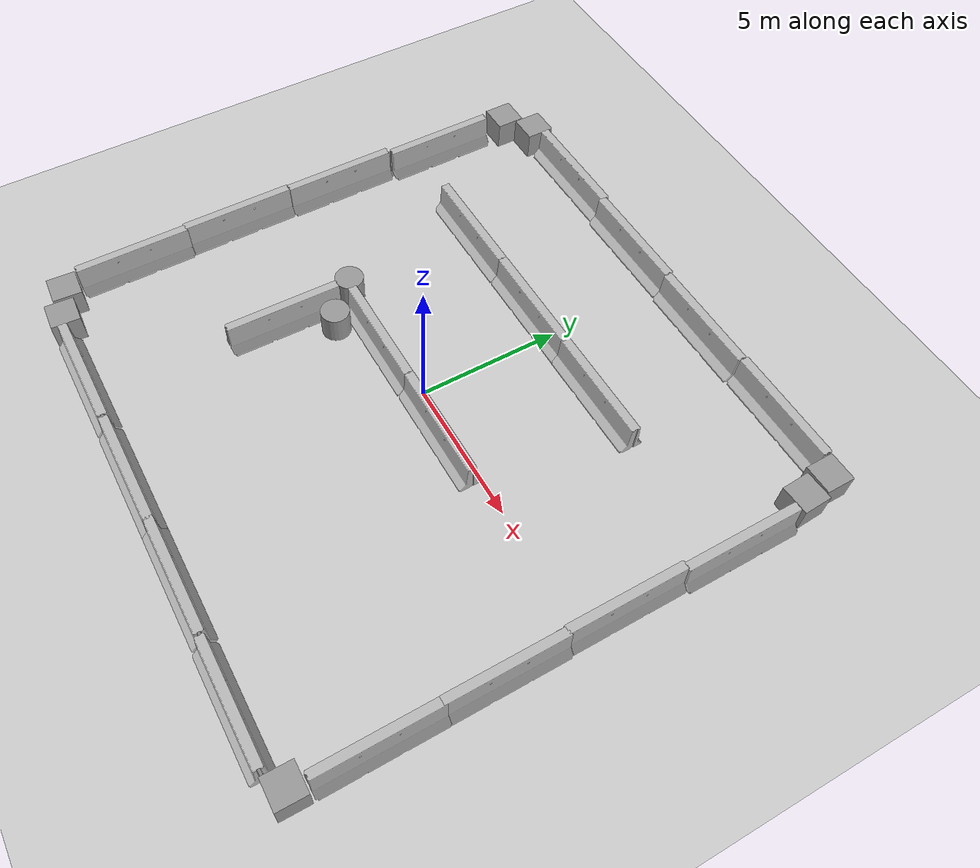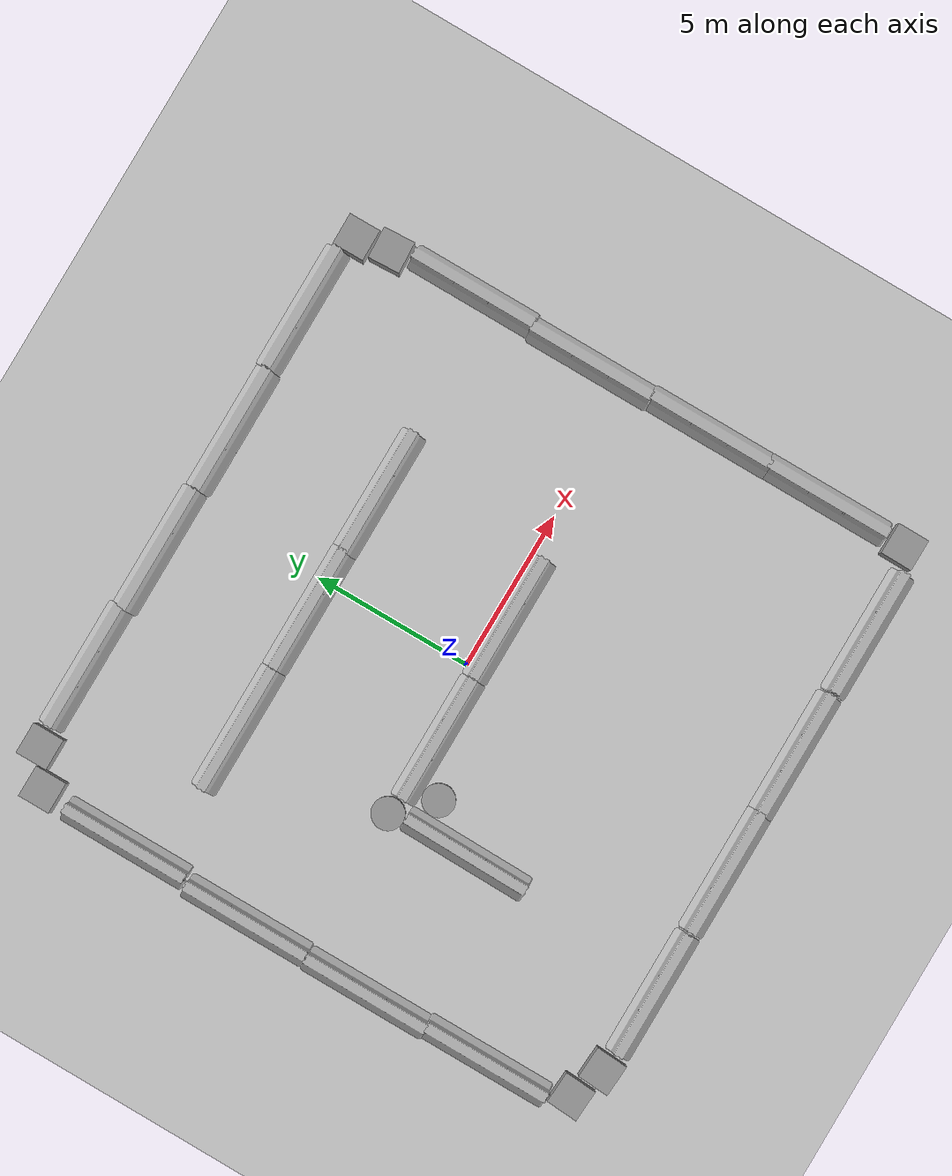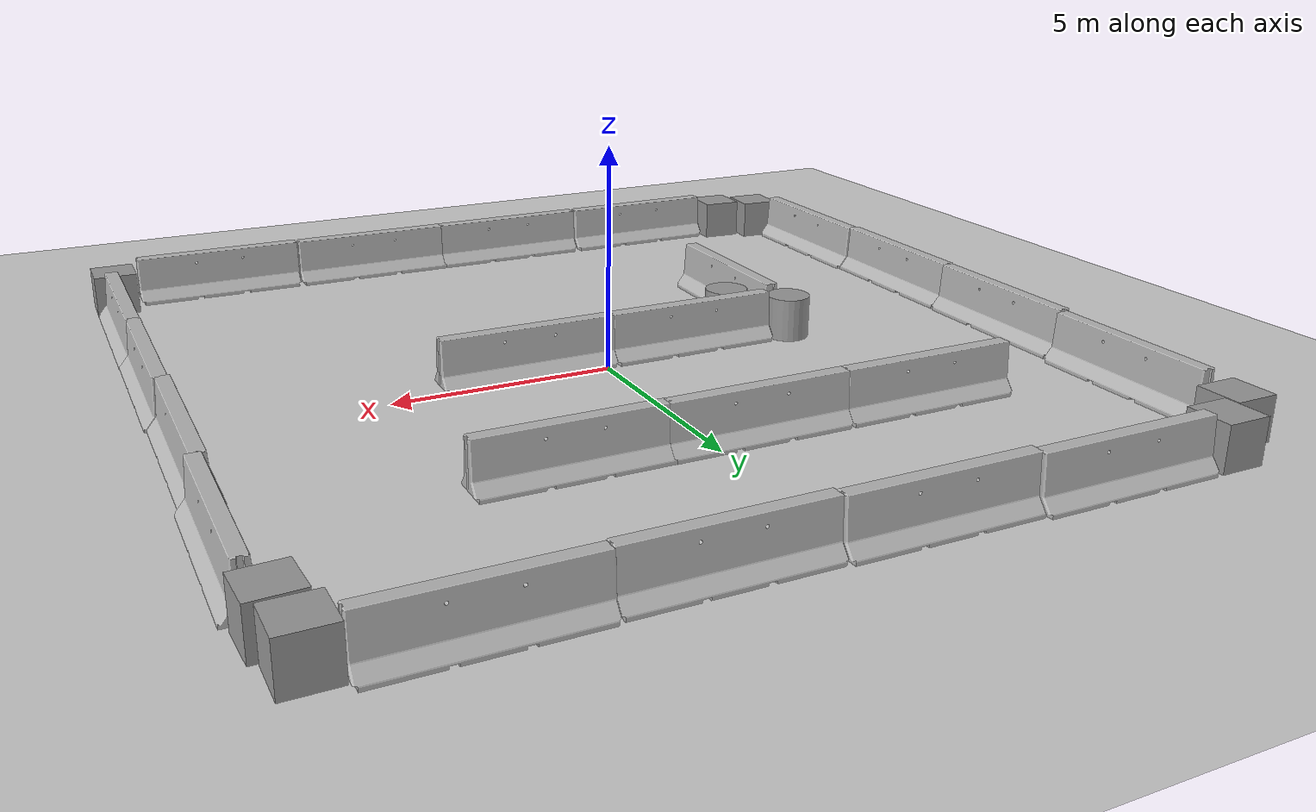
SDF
<sdf version="1.7">
 <world name="default">
  <light name="sun" type="directional">
   <pose>0 0 10 0 -0 0</pose>
   <diffuse>0.8 0.8 0.8 1</diffuse>
   <specular>0.2 0.2 0.2 1</specular>
   <attenuation>
    <range>1000</range>
    <constant>0.9</constant>
    <linear>0.01</linear>
    <quadratic>0.001</quadratic>
   </attenuation>
   <direction>-0.5 0.1 -0.9</direction>
   <spot><inner_angle>0</inner_angle><outer_angle>0</outer_angle><falloff>0</falloff></spot>
  </light>
  <model name="ground_plane">
   <static>1</static>
   <link name="link">
    <collision name="collision">
     <geometry><plane><normal>0 0 1</normal><size>100 100</size></plane></geometry>
     <surface><friction><ode><mu>100</mu><mu2>50</mu2></ode></friction></surface>
    </collision>
    <visual name="visual">
     <cast_shadows>0</cast_shadows>
     <geometry><plane><normal>0 0 1</normal><size>100 100</size></plane></geometry>
     <material>
      <script><uri>file://media/materials/scripts/gazebo.material</uri><name>Gazebo/Grey</name></script>
     </material>
    </visual>
   </link>
  </model>
  <gravity>0 0 -9.8</gravity>
  <magnetic_field>6e-06 2.3e-05 -4.2e-05</magnetic_field>
  <atmosphere type="adiabatic"/>
  <physics name="default_physics" default="0" type="ode">
   <max_step_size>0.001</max_step_size>
   <real_time_factor>1</real_time_factor>
   <real_time_update_rate>1000</real_time_update_rate>
  </physics>
  <scene><ambient>0.4 0.4 0.4 1</ambient><background>0.7 0.7 0.7 1</background><shadows>1</shadows></scene>
  <spherical_coordinates>
   <surface_model>EARTH_WGS84</surface_model>
   <latitude_deg>0</latitude_deg>
   <longitude_deg>0</longitude_deg>
   <elevation>0</elevation>
   <heading_deg>0</heading_deg>
  </spherical_coordinates>
  <model name="jersey_barrier">
   <static>1</static>
   <link name="link">
    <visual name="visual">
     <geometry><mesh><uri>model://jersey_barrier/meshes/jersey_barrier.dae</uri></mesh></geometry>
    </visual>
    <collision name="upright">
     <pose>0 0 0.5715 0 -0 0</pose>
     <geometry><box><size>4.06542 0.3063 1.143</size></box></geometry>
    </collision>
    <collision name="base">
     <pose>0 0 0.032258 0 -0 0</pose>
     <geometry><box><size>4.06542 0.8107 0.064516</size></box></geometry>
    </collision>
    <collision name="base2">
     <pose>0 0 0.1 0 -0 0</pose>
     <geometry><box><size>4.06542 0.65 0.1</size></box></geometry>
    </collision>
    <collision name="base3">
     <pose>0 0 0.2 0 -0 0</pose>
     <geometry><box><size>4.06542 0.5 0.1</size></box></geometry>
    </collision>
    <collision name="left-angle">
     <pose>0 -0.224 0.2401 0.9 -0 0</pose>
     <geometry><box><size>4.06542 0.5 0.064516</size></box></geometry>
    </collision>
    <collision name="right-angle">
     <pose>0 0.224 0.2401 -0.9 0 0</pose>
     <geometry><box><size>4.06542 0.5 0.064516</size></box></geometry>
    </collision>
   </link>
   <pose>-5.65677 9.4608 0 0 -0 0</pose>
  </model>
  <model name="jersey_barrier_clone">
   <static>1</static>
   <link name="link">
    <visual name="visual">
     <geometry><mesh><uri>model://jersey_barrier/meshes/jersey_barrier.dae</uri></mesh></geometry>
    </visual>
    <collision name="upright">
     <pose>0 0 0.5715 0 -0 0</pose>
     <geometry><box><size>4.06542 0.3063 1.143</size></box></geometry>
    </collision>
    <collision name="base">
     <pose>0 0 0.032258 0 -0 0</pose>
     <geometry><box><size>4.06542 0.8107 0.064516</size></box></geometry>
    </collision>
    <collision name="base2">
     <pose>0 0 0.1 0 -0 0</pose>
     <geometry><box><size>4.06542 0.65 0.1</size></box></geometry>
    </collision>
    <collision name="base3">
     <pose>0 0 0.2 0 -0 0</pose>
     <geometry><box><size>4.06542 0.5 0.1</size></box></geometry>
    </collision>
    <collision name="left-angle">
     <pose>0 -0.224 0.2401 0.9 -0 0</pose>
     <geometry><box><size>4.06542 0.5 0.064516</size></box></geometry>
    </collision>
    <collision name="right-angle">
     <pose>0 0.224 0.2401 -0.9 0 0</pose>
     <geometry><box><size>4.06542 0.5 0.064516</size></box></geometry>
    </collision>
   </link>
   <pose>-1.65987 9.36075 0 0 -0 0</pose>
  </model>
  <model name="jersey_barrier_clone_0">
   <static>1</static>
   <link name="link">
    <visual name="visual">
     <geometry><mesh><uri>model://jersey_barrier/meshes/jersey_barrier.dae</uri></mesh></geometry>
    </visual>
    <collision name="upright">
     <pose>0 0 0.5715 0 -0 0</pose>
     <geometry><box><size>4.06542 0.3063 1.143</size></box></geometry>
    </collision>
    <collision name="base">
     <pose>0 0 0.032258 0 -0 0</pose>
     <geometry><box><size>4.06542 0.8107 0.064516</size></box></geometry>
    </collision>
    <collision name="base2">
     <pose>0 0 0.1 0 -0 0</pose>
     <geometry><box><size>4.06542 0.65 0.1</size></box></geometry>
    </collision>
    <collision name="base3">
     <pose>0 0 0.2 0 -0 0</pose>
     <geometry><box><size>4.06542 0.5 0.1</size></box></geometry>
    </collision>
    <collision name="left-angle">
     <pose>0 -0.224 0.2401 0.9 -0 0</pose>
     <geometry><box><size>4.06542 0.5 0.064516</size></box></geometry>
    </collision>
    <collision name="right-angle">
     <pose>0 0.224 0.2401 -0.9 0 0</pose>
     <geometry><box><size>4.06542 0.5 0.064516</size></box></geometry>
    </collision>
   </link>
   <pose>2.39773 9.29085 0 0 -0 0</pose>
  </model>
  <model name="jersey_barrier_clone_1">
   <static>1</static>
   <link name="link">
    <visual name="visual">
     <geometry><mesh><uri>model://jersey_barrier/meshes/jersey_barrier.dae</uri></mesh></geometry>
    </visual>
    <collision name="upright">
     <pose>0 0 0.5715 0 -0 0</pose>
     <geometry><box><size>4.06542 0.3063 1.143</size></box></geometry>
    </collision>
    <collision name="base">
     <pose>0 0 0.032258 0 -0 0</pose>
     <geometry><box><size>4.06542 0.8107 0.064516</size></box></geometry>
    </collision>
    <collision name="base2">
     <pose>0 0 0.1 0 -0 0</pose>
     <geometry><box><size>4.06542 0.65 0.1</size></box></geometry>
    </collision>
    <collision name="base3">
     <pose>0 0 0.2 0 -0 0</pose>
     <geometry><box><size>4.06542 0.5 0.1</size></box></geometry>
    </collision>
    <collision name="left-angle">
     <pose>0 -0.224 0.2401 0.9 -0 0</pose>
     <geometry><box><size>4.06542 0.5 0.064516</size></box></geometry>
    </collision>
    <collision name="right-angle">
     <pose>0 0.224 0.2401 -0.9 0 0</pose>
     <geometry><box><size>4.06542 0.5 0.064516</size></box></geometry>
    </collision>
   </link>
   <pose>6.45464 9.33993 0 0 -0 0</pose>
  </model>
  <model name="jersey_barrier_clone_3">
   <static>1</static>
   <link name="link">
    <visual name="visual">
     <geometry><mesh><uri>model://jersey_barrier/meshes/jersey_barrier.dae</uri></mesh></geometry>
    </visual>
    <collision name="upright">
     <pose>0 0 0.5715 0 -0 0</pose>
     <geometry><box><size>4.06542 0.3063 1.143</size></box></geometry>
    </collision>
    <collision name="base">
     <pose>0 0 0.032258 0 -0 0</pose>
     <geometry><box><size>4.06542 0.8107 0.064516</size></box></geometry>
    </collision>
    <collision name="base2">
     <pose>0 0 0.1 0 -0 0</pose>
     <geometry><box><size>4.06542 0.65 0.1</size></box></geometry>
    </collision>
    <collision name="base3">
     <pose>0 0 0.2 0 -0 0</pose>
     <geometry><box><size>4.06542 0.5 0.1</size></box></geometry>
    </collision>
    <collision name="left-angle">
     <pose>0 -0.224 0.2401 0.9 -0 0</pose>
     <geometry><box><size>4.06542 0.5 0.064516</size></box></geometry>
    </collision>
    <collision name="right-angle">
     <pose>0 0.224 0.2401 -0.9 0 0</pose>
     <geometry><box><size>4.06542 0.5 0.064516</size></box></geometry>
    </collision>
   </link>
   <pose>9.44656 5.35522 0 0 0 -1.56865</pose>
  </model>
  <model name="jersey_barrier_clone_3_clone">
   <static>1</static>
   <link name="link">
    <visual name="visual">
     <geometry><mesh><uri>model://jersey_barrier/meshes/jersey_barrier.dae</uri></mesh></geometry>
    </visual>
    <collision name="upright">
     <pose>0 0 0.5715 0 -0 0</pose>
     <geometry><box><size>4.06542 0.3063 1.143</size></box></geometry>
    </collision>
    <collision name="base">
     <pose>0 0 0.032258 0 -0 0</pose>
     <geometry><box><size>4.06542 0.8107 0.064516</size></box></geometry>
    </collision>
    <collision name="base2">
     <pose>0 0 0.1 0 -0 0</pose>
     <geometry><box><size>4.06542 0.65 0.1</size></box></geometry>
    </collision>
    <collision name="base3">
     <pose>0 0 0.2 0 -0 0</pose>
     <geometry><box><size>4.06542 0.5 0.1</size></box></geometry>
    </collision>
    <collision name="left-angle">
     <pose>0 -0.224 0.2401 0.9 -0 0</pose>
     <geometry><box><size>4.06542 0.5 0.064516</size></box></geometry>
    </collision>
    <collision name="right-angle">
     <pose>0 0.224 0.2401 -0.9 0 0</pose>
     <geometry><box><size>4.06542 0.5 0.064516</size></box></geometry>
    </collision>
   </link>
   <pose>9.3727 1.33119 0 0 0 -1.56865</pose>
  </model>
  <model name="jersey_barrier_clone_3_clone_0">
   <static>1</static>
   <link name="link">
    <visual name="visual">
     <geometry><mesh><uri>model://jersey_barrier/meshes/jersey_barrier.dae</uri></mesh></geometry>
    </visual>
    <collision name="upright">
     <pose>0 0 0.5715 0 -0 0</pose>
     <geometry><box><size>4.06542 0.3063 1.143</size></box></geometry>
    </collision>
    <collision name="base">
     <pose>0 0 0.032258 0 -0 0</pose>
     <geometry><box><size>4.06542 0.8107 0.064516</size></box></geometry>
    </collision>
    <collision name="base2">
     <pose>0 0 0.1 0 -0 0</pose>
     <geometry><box><size>4.06542 0.65 0.1</size></box></geometry>
    </collision>
    <collision name="base3">
     <pose>0 0 0.2 0 -0 0</pose>
     <geometry><box><size>4.06542 0.5 0.1</size></box></geometry>
    </collision>
    <collision name="left-angle">
     <pose>0 -0.224 0.2401 0.9 -0 0</pose>
     <geometry><box><size>4.06542 0.5 0.064516</size></box></geometry>
    </collision>
    <collision name="right-angle">
     <pose>0 0.224 0.2401 -0.9 0 0</pose>
     <geometry><box><size>4.06542 0.5 0.064516</size></box></geometry>
    </collision>
   </link>
   <pose>9.4315 -2.6268 0 0 0 -1.56865</pose>
  </model>
  <model name="jersey_barrier_clone_3_clone_1">
   <static>1</static>
   <link name="link">
    <visual name="visual">
     <geometry><mesh><uri>model://jersey_barrier/meshes/jersey_barrier.dae</uri></mesh></geometry>
    </visual>
    <collision name="upright">
     <pose>0 0 0.5715 0 -0 0</pose>
     <geometry><box><size>4.06542 0.3063 1.143</size></box></geometry>
    </collision>
    <collision name="base">
     <pose>0 0 0.032258 0 -0 0</pose>
     <geometry><box><size>4.06542 0.8107 0.064516</size></box></geometry>
    </collision>
    <collision name="base2">
     <pose>0 0 0.1 0 -0 0</pose>
     <geometry><box><size>4.06542 0.65 0.1</size></box></geometry>
    </collision>
    <collision name="base3">
     <pose>0 0 0.2 0 -0 0</pose>
     <geometry><box><size>4.06542 0.5 0.1</size></box></geometry>
    </collision>
    <collision name="left-angle">
     <pose>0 -0.224 0.2401 0.9 -0 0</pose>
     <geometry><box><size>4.06542 0.5 0.064516</size></box></geometry>
    </collision>
    <collision name="right-angle">
     <pose>0 0.224 0.2401 -0.9 0 0</pose>
     <geometry><box><size>4.06542 0.5 0.064516</size></box></geometry>
    </collision>
   </link>
   <pose>9.44969 -6.53485 0 0 0 -1.56865</pose>
  </model>
  <model name="jersey_barrier_clone_2_clone">
   <static>1</static>
   <link name="link">
    <visual name="visual">
     <geometry><mesh><uri>model://jersey_barrier/meshes/jersey_barrier.dae</uri></mesh></geometry>
    </visual>
    <collision name="upright">
     <pose>0 0 0.5715 0 -0 0</pose>
     <geometry><box><size>4.06542 0.3063 1.143</size></box></geometry>
    </collision>
    <collision name="base">
     <pose>0 0 0.032258 0 -0 0</pose>
     <geometry><box><size>4.06542 0.8107 0.064516</size></box></geometry>
    </collision>
    <collision name="base2">
     <pose>0 0 0.1 0 -0 0</pose>
     <geometry><box><size>4.06542 0.65 0.1</size></box></geometry>
    </collision>
    <collision name="base3">
     <pose>0 0 0.2 0 -0 0</pose>
     <geometry><box><size>4.06542 0.5 0.1</size></box></geometry>
    </collision>
    <collision name="left-angle">
     <pose>0 -0.224 0.2401 0.9 -0 0</pose>
     <geometry><box><size>4.06542 0.5 0.064516</size></box></geometry>
    </collision>
    <collision name="right-angle">
     <pose>0 0.224 0.2401 -0.9 0 0</pose>
     <geometry><box><size>4.06542 0.5 0.064516</size></box></geometry>
    </collision>
   </link>
   <pose>6.70657 -9.54347 0 0 -0 0</pose>
  </model>
  <model name="jersey_barrier_clone_2_clone_0">
   <static>1</static>
   <link name="link">
    <visual name="visual">
     <geometry><mesh><uri>model://jersey_barrier/meshes/jersey_barrier.dae</uri></mesh></geometry>
    </visual>
    <collision name="upright">
     <pose>0 0 0.5715 0 -0 0</pose>
     <geometry><box><size>4.06542 0.3063 1.143</size></box></geometry>
    </collision>
    <collision name="base">
     <pose>0 0 0.032258 0 -0 0</pose>
     <geometry><box><size>4.06542 0.8107 0.064516</size></box></geometry>
    </collision>
    <collision name="base2">
     <pose>0 0 0.1 0 -0 0</pose>
     <geometry><box><size>4.06542 0.65 0.1</size></box></geometry>
    </collision>
    <collision name="base3">
     <pose>0 0 0.2 0 -0 0</pose>
     <geometry><box><size>4.06542 0.5 0.1</size></box></geometry>
    </collision>
    <collision name="left-angle">
     <pose>0 -0.224 0.2401 0.9 -0 0</pose>
     <geometry><box><size>4.06542 0.5 0.064516</size></box></geometry>
    </collision>
    <collision name="right-angle">
     <pose>0 0.224 0.2401 -0.9 0 0</pose>
     <geometry><box><size>4.06542 0.5 0.064516</size></box></geometry>
    </collision>
   </link>
   <pose>2.59616 -9.50928 0 0 -0 0</pose>
  </model>
  <model name="jersey_barrier_clone_2_clone_1">
   <static>1</static>
   <link name="link">
    <visual name="visual">
     <geometry><mesh><uri>model://jersey_barrier/meshes/jersey_barrier.dae</uri></mesh></geometry>
    </visual>
    <collision name="upright">
     <pose>0 0 0.5715 0 -0 0</pose>
     <geometry><box><size>4.06542 0.3063 1.143</size></box></geometry>
    </collision>
    <collision name="base">
     <pose>0 0 0.032258 0 -0 0</pose>
     <geometry><box><size>4.06542 0.8107 0.064516</size></box></geometry>
    </collision>
    <collision name="base2">
     <pose>0 0 0.1 0 -0 0</pose>
     <geometry><box><size>4.06542 0.65 0.1</size></box></geometry>
    </collision>
    <collision name="base3">
     <pose>0 0 0.2 0 -0 0</pose>
     <geometry><box><size>4.06542 0.5 0.1</size></box></geometry>
    </collision>
    <collision name="left-angle">
     <pose>0 -0.224 0.2401 0.9 -0 0</pose>
     <geometry><box><size>4.06542 0.5 0.064516</size></box></geometry>
    </collision>
    <collision name="right-angle">
     <pose>0 0.224 0.2401 -0.9 0 0</pose>
     <geometry><box><size>4.06542 0.5 0.064516</size></box></geometry>
    </collision>
   </link>
   <pose>-1.33414 -9.50852 0 0 -0 0</pose>
  </model>
  <model name="jersey_barrier_clone_2_clone_2">
   <static>1</static>
   <link name="link">
    <visual name="visual">
     <geometry><mesh><uri>model://jersey_barrier/meshes/jersey_barrier.dae</uri></mesh></geometry>
    </visual>
    <collision name="upright">
     <pose>0 0 0.5715 0 -0 0</pose>
     <geometry><box><size>4.06542 0.3063 1.143</size></box></geometry>
    </collision>
    <collision name="base">
     <pose>0 0 0.032258 0 -0 0</pose>
     <geometry><box><size>4.06542 0.8107 0.064516</size></box></geometry>
    </collision>
    <collision name="base2">
     <pose>0 0 0.1 0 -0 0</pose>
     <geometry><box><size>4.06542 0.65 0.1</size></box></geometry>
    </collision>
    <collision name="base3">
     <pose>0 0 0.2 0 -0 0</pose>
     <geometry><box><size>4.06542 0.5 0.1</size></box></geometry>
    </collision>
    <collision name="left-angle">
     <pose>0 -0.224 0.2401 0.9 -0 0</pose>
     <geometry><box><size>4.06542 0.5 0.064516</size></box></geometry>
    </collision>
    <collision name="right-angle">
     <pose>0 0.224 0.2401 -0.9 0 0</pose>
     <geometry><box><size>4.06542 0.5 0.064516</size></box></geometry>
    </collision>
   </link>
   <pose>-5.44605 -9.49634 0 0 -0 0</pose>
  </model>
  <model name="jersey_barrier_clone_3_clone_1_clone">
   <static>1</static>
   <link name="link">
    <visual name="visual">
     <geometry><mesh><uri>model://jersey_barrier/meshes/jersey_barrier.dae</uri></mesh></geometry>
    </visual>
    <collision name="upright">
     <pose>0 0 0.5715 0 -0 0</pose>
     <geometry><box><size>4.06542 0.3063 1.143</size></box></geometry>
    </collision>
    <collision name="base">
     <pose>0 0 0.032258 0 -0 0</pose>
     <geometry><box><size>4.06542 0.8107 0.064516</size></box></geometry>
    </collision>
    <collision name="base2">
     <pose>0 0 0.1 0 -0 0</pose>
     <geometry><box><size>4.06542 0.65 0.1</size></box></geometry>
    </collision>
    <collision name="base3">
     <pose>0 0 0.2 0 -0 0</pose>
     <geometry><box><size>4.06542 0.5 0.1</size></box></geometry>
    </collision>
    <collision name="left-angle">
     <pose>0 -0.224 0.2401 0.9 -0 0</pose>
     <geometry><box><size>4.06542 0.5 0.064516</size></box></geometry>
    </collision>
    <collision name="right-angle">
     <pose>0 0.224 0.2401 -0.9 0 0</pose>
     <geometry><box><size>4.06542 0.5 0.064516</size></box></geometry>
    </collision>
   </link>
   <pose>-9.54289 -6.33149 0 0 0 -1.56865</pose>
  </model>
  <model name="jersey_barrier_clone_3_clone_1_clone_0">
   <static>1</static>
   <link name="link">
    <visual name="visual">
     <geometry><mesh><uri>model://jersey_barrier/meshes/jersey_barrier.dae</uri></mesh></geometry>
    </visual>
    <collision name="upright">
     <pose>0 0 0.5715 0 -0 0</pose>
     <geometry><box><size>4.06542 0.3063 1.143</size></box></geometry>
    </collision>
    <collision name="base">
     <pose>0 0 0.032258 0 -0 0</pose>
     <geometry><box><size>4.06542 0.8107 0.064516</size></box></geometry>
    </collision>
    <collision name="base2">
     <pose>0 0 0.1 0 -0 0</pose>
     <geometry><box><size>4.06542 0.65 0.1</size></box></geometry>
    </collision>
    <collision name="base3">
     <pose>0 0 0.2 0 -0 0</pose>
     <geometry><box><size>4.06542 0.5 0.1</size></box></geometry>
    </collision>
    <collision name="left-angle">
     <pose>0 -0.224 0.2401 0.9 -0 0</pose>
     <geometry><box><size>4.06542 0.5 0.064516</size></box></geometry>
    </collision>
    <collision name="right-angle">
     <pose>0 0.224 0.2401 -0.9 0 0</pose>
     <geometry><box><size>4.06542 0.5 0.064516</size></box></geometry>
    </collision>
   </link>
   <pose>-9.6221 -2.35336 0 0 0 -1.56865</pose>
  </model>
  <model name="jersey_barrier_clone_3_clone_1_clone_1">
   <static>1</static>
   <link name="link">
    <visual name="visual">
     <geometry><mesh><uri>model://jersey_barrier/meshes/jersey_barrier.dae</uri></mesh></geometry>
    </visual>
    <collision name="upright">
     <pose>0 0 0.5715 0 -0 0</pose>
     <geometry><box><size>4.06542 0.3063 1.143</size></box></geometry>
    </collision>
    <collision name="base">
     <pose>0 0 0.032258 0 -0 0</pose>
     <geometry><box><size>4.06542 0.8107 0.064516</size></box></geometry>
    </collision>
    <collision name="base2">
     <pose>0 0 0.1 0 -0 0</pose>
     <geometry><box><size>4.06542 0.65 0.1</size></box></geometry>
    </collision>
    <collision name="base3">
     <pose>0 0 0.2 0 -0 0</pose>
     <geometry><box><size>4.06542 0.5 0.1</size></box></geometry>
    </collision>
    <collision name="left-angle">
     <pose>0 -0.224 0.2401 0.9 -0 0</pose>
     <geometry><box><size>4.06542 0.5 0.064516</size></box></geometry>
    </collision>
    <collision name="right-angle">
     <pose>0 0.224 0.2401 -0.9 0 0</pose>
     <geometry><box><size>4.06542 0.5 0.064516</size></box></geometry>
    </collision>
   </link>
   <pose>-9.58952 1.69745 0 0 0 -1.56865</pose>
  </model>
  <model name="jersey_barrier_clone_3_clone_1_clone_2">
   <static>1</static>
   <link name="link">
    <visual name="visual">
     <geometry><mesh><uri>model://jersey_barrier/meshes/jersey_barrier.dae</uri></mesh></geometry>
    </visual>
    <collision name="upright">
     <pose>0 0 0.5715 0 -0 0</pose>
     <geometry><box><size>4.06542 0.3063 1.143</size></box></geometry>
    </collision>
    <collision name="base">
     <pose>0 0 0.032258 0 -0 0</pose>
     <geometry><box><size>4.06542 0.8107 0.064516</size></box></geometry>
    </collision>
    <collision name="base2">
     <pose>0 0 0.1 0 -0 0</pose>
     <geometry><box><size>4.06542 0.65 0.1</size></box></geometry>
    </collision>
    <collision name="base3">
     <pose>0 0 0.2 0 -0 0</pose>
     <geometry><box><size>4.06542 0.5 0.1</size></box></geometry>
    </collision>
    <collision name="left-angle">
     <pose>0 -0.224 0.2401 0.9 -0 0</pose>
     <geometry><box><size>4.06542 0.5 0.064516</size></box></geometry>
    </collision>
    <collision name="right-angle">
     <pose>0 0.224 0.2401 -0.9 0 0</pose>
     <geometry><box><size>4.06542 0.5 0.064516</size></box></geometry>
    </collision>
   </link>
   <pose>-9.44715 5.83721 0 0 0 -1.56865</pose>
  </model>
  <model name="jersey_barrier_0">
   <static>1</static>
   <link name="link">
    <visual name="visual">
     <geometry><mesh><uri>model://jersey_barrier/meshes/jersey_barrier.dae</uri></mesh></geometry>
    </visual>
    <collision name="upright">
     <pose>0 0 0.5715 0 -0 0</pose>
     <geometry><box><size>4.06542 0.3063 1.143</size></box></geometry>
    </collision>
    <collision name="base">
     <pose>0 0 0.032258 0 -0 0</pose>
     <geometry><box><size>4.06542 0.8107 0.064516</size></box></geometry>
    </collision>
    <collision name="base2">
     <pose>0 0 0.1 0 -0 0</pose>
     <geometry><box><size>4.06542 0.65 0.1</size></box></geometry>
    </collision>
    <collision name="base3">
     <pose>0 0 0.2 0 -0 0</pose>
     <geometry><box><size>4.06542 0.5 0.1</size></box></geometry>
    </collision>
    <collision name="left-angle">
     <pose>0 -0.224 0.2401 0.9 -0 0</pose>
     <geometry><box><size>4.06542 0.5 0.064516</size></box></geometry>
    </collision>
    <collision name="right-angle">
     <pose>0 0.224 0.2401 -0.9 0 0</pose>
     <geometry><box><size>4.06542 0.5 0.064516</size></box></geometry>
    </collision>
   </link>
   <pose>-4.97429 4.73074 0 0 -0 0</pose>
  </model>
  <model name="jersey_barrier_0_clone">
   <static>1</static>
   <link name="link">
    <visual name="visual">
     <geometry><mesh><uri>model://jersey_barrier/meshes/jersey_barrier.dae</uri></mesh></geometry>
    </visual>
    <collision name="upright">
     <pose>0 0 0.5715 0 -0 0</pose>
     <geometry><box><size>4.06542 0.3063 1.143</size></box></geometry>
    </collision>
    <collision name="base">
     <pose>0 0 0.032258 0 -0 0</pose>
     <geometry><box><size>4.06542 0.8107 0.064516</size></box></geometry>
    </collision>
    <collision name="base2">
     <pose>0 0 0.1 0 -0 0</pose>
     <geometry><box><size>4.06542 0.65 0.1</size></box></geometry>
    </collision>
    <collision name="base3">
     <pose>0 0 0.2 0 -0 0</pose>
     <geometry><box><size>4.06542 0.5 0.1</size></box></geometry>
    </collision>
    <collision name="left-angle">
     <pose>0 -0.224 0.2401 0.9 -0 0</pose>
     <geometry><box><size>4.06542 0.5 0.064516</size></box></geometry>
    </collision>
    <collision name="right-angle">
     <pose>0 0.224 0.2401 -0.9 0 0</pose>
     <geometry><box><size>4.06542 0.5 0.064516</size></box></geometry>
    </collision>
   </link>
   <pose>-0.93635 4.73131 0 0 -0 0</pose>
  </model>
  <model name="jersey_barrier_0_clone_0">
   <static>1</static>
   <link name="link">
    <visual name="visual">
     <geometry><mesh><uri>model://jersey_barrier/meshes/jersey_barrier.dae</uri></mesh></geometry>
    </visual>
    <collision name="upright">
     <pose>0 0 0.5715 0 -0 0</pose>
     <geometry><box><size>4.06542 0.3063 1.143</size></box></geometry>
    </collision>
    <collision name="base">
     <pose>0 0 0.032258 0 -0 0</pose>
     <geometry><box><size>4.06542 0.8107 0.064516</size></box></geometry>
    </collision>
    <collision name="base2">
     <pose>0 0 0.1 0 -0 0</pose>
     <geometry><box><size>4.06542 0.65 0.1</size></box></geometry>
    </collision>
    <collision name="base3">
     <pose>0 0 0.2 0 -0 0</pose>
     <geometry><box><size>4.06542 0.5 0.1</size></box></geometry>
    </collision>
    <collision name="left-angle">
     <pose>0 -0.224 0.2401 0.9 -0 0</pose>
     <geometry><box><size>4.06542 0.5 0.064516</size></box></geometry>
    </collision>
    <collision name="right-angle">
     <pose>0 0.224 0.2401 -0.9 0 0</pose>
     <geometry><box><size>4.06542 0.5 0.064516</size></box></geometry>
    </collision>
   </link>
   <pose>2.99134 4.7208 0 0 -0 0</pose>
  </model>
  <model name="jersey_barrier_0_clone_1">
   <static>1</static>
   <link name="link">
    <visual name="visual">
     <geometry><mesh><uri>model://jersey_barrier/meshes/jersey_barrier.dae</uri></mesh></geometry>
    </visual>
    <collision name="upright">
     <pose>0 0 0.5715 0 -0 0</pose>
     <geometry><box><size>4.06542 0.3063 1.143</size></box></geometry>
    </collision>
    <collision name="base">
     <pose>0 0 0.032258 0 -0 0</pose>
     <geometry><box><size>4.06542 0.8107 0.064516</size></box></geometry>
    </collision>
    <collision name="base2">
     <pose>0 0 0.1 0 -0 0</pose>
     <geometry><box><size>4.06542 0.65 0.1</size></box></geometry>
    </collision>
    <collision name="base3">
     <pose>0 0 0.2 0 -0 0</pose>
     <geometry><box><size>4.06542 0.5 0.1</size></box></geometry>
    </collision>
    <collision name="left-angle">
     <pose>0 -0.224 0.2401 0.9 -0 0</pose>
     <geometry><box><size>4.06542 0.5 0.064516</size></box></geometry>
    </collision>
    <collision name="right-angle">
     <pose>0 0.224 0.2401 -0.9 0 0</pose>
     <geometry><box><size>4.06542 0.5 0.064516</size></box></geometry>
    </collision>
   </link>
   <pose>-2.28125 -0.396276 0 0 -0 0</pose>
  </model>
  <model name="jersey_barrier_0_clone_1_clone">
   <static>1</static>
   <link name="link">
    <visual name="visual">
     <geometry><mesh><uri>model://jersey_barrier/meshes/jersey_barrier.dae</uri></mesh></geometry>
    </visual>
    <collision name="upright">
     <pose>0 0 0.5715 0 -0 0</pose>
     <geometry><box><size>4.06542 0.3063 1.143</size></box></geometry>
    </collision>
    <collision name="base">
     <pose>0 0 0.032258 0 -0 0</pose>
     <geometry><box><size>4.06542 0.8107 0.064516</size></box></geometry>
    </collision>
    <collision name="base2">
     <pose>0 0 0.1 0 -0 0</pose>
     <geometry><box><size>4.06542 0.65 0.1</size></box></geometry>
    </collision>
    <collision name="base3">
     <pose>0 0 0.2 0 -0 0</pose>
     <geometry><box><size>4.06542 0.5 0.1</size></box></geometry>
    </collision>
    <collision name="left-angle">
     <pose>0 -0.224 0.2401 0.9 -0 0</pose>
     <geometry><box><size>4.06542 0.5 0.064516</size></box></geometry>
    </collision>
    <collision name="right-angle">
     <pose>0 0.224 0.2401 -0.9 0 0</pose>
     <geometry><box><size>4.06542 0.5 0.064516</size></box></geometry>
    </collision>
   </link>
   <pose>1.76519 -0.393386 0 0 -0 0</pose>
  </model>
  <model name="jersey_barrier_0_clone_1_clone_clone">
   <static>1</static>
   <link name="link">
    <visual name="visual">
     <geometry><mesh><uri>model://jersey_barrier/meshes/jersey_barrier.dae</uri></mesh></geometry>
    </visual>
    <collision name="upright">
     <pose>0 0 0.5715 0 -0 0</pose>
     <geometry><box><size>4.06542 0.3063 1.143</size></box></geometry>
    </collision>
    <collision name="base">
     <pose>0 0 0.032258 0 -0 0</pose>
     <geometry><box><size>4.06542 0.8107 0.064516</size></box></geometry>
    </collision>
    <collision name="base2">
     <pose>0 0 0.1 0 -0 0</pose>
     <geometry><box><size>4.06542 0.65 0.1</size></box></geometry>
    </collision>
    <collision name="base3">
     <pose>0 0 0.2 0 -0 0</pose>
     <geometry><box><size>4.06542 0.5 0.1</size></box></geometry>
    </collision>
    <collision name="left-angle">
     <pose>0 -0.224 0.2401 0.9 -0 0</pose>
     <geometry><box><size>4.06542 0.5 0.064516</size></box></geometry>
    </collision>
    <collision name="right-angle">
     <pose>0 0.224 0.2401 -0.9 0 0</pose>
     <geometry><box><size>4.06542 0.5 0.064516</size></box></geometry>
    </collision>
   </link>
   <pose>-4.70694 -2.78766 0 0 0 -1.58136</pose>
  </model>
  <model name="unit_box">
   <pose>9.35904 -9.13902 0.499995 -1e-05 -0 -0.009942</pose>
   <link name="link">
    <inertial>
     <mass>1</mass>
     <inertia>
      <ixx>0.166667</ixx>
      <ixy>0</ixy>
      <ixz>0</ixz>
      <iyy>0.166667</iyy>
      <iyz>0</iyz>
      <izz>0.166667</izz>
     </inertia>
    </inertial>
    <collision name="collision"><geometry><box><size>1 1 1</size></box></geometry></collision>
    <visual name="visual">
     <geometry><box><size>1 1 1</size></box></geometry>
     <material>
      <script><name>Gazebo/Grey</name><uri>file://media/materials/scripts/gazebo.material</uri></script>
     </material>
    </visual>
   </link>
  </model>
  <model name="unit_box_0">
   <pose>-8.06084 -9.33689 0.499995 0 -1e-05 -0.062716</pose>
   <link name="link">
    <inertial>
     <mass>1</mass>
     <inertia>
      <ixx>0.166667</ixx>
      <ixy>0</ixy>
      <ixz>0</ixz>
      <iyy>0.166667</iyy>
      <iyz>0</iyz>
      <izz>0.166667</izz>
     </inertia>
    </inertial>
    <collision name="collision"><geometry><box><size>1 1 1</size></box></geometry></collision>
    <visual name="visual">
     <geometry><box><size>1 1 1</size></box></geometry>
     <material>
      <script><name>Gazebo/Grey</name><uri>file://media/materials/scripts/gazebo.material</uri></script>
     </material>
    </visual>
   </link>
  </model>
  <model name="unit_box_1">
   <pose>-9.13866 -8.932 0.499995 0 -1e-05 -0.06322</pose>
   <link name="link">
    <inertial>
     <mass>1</mass>
     <inertia>
      <ixx>0.166667</ixx>
      <ixy>0</ixy>
      <ixz>0</ixz>
      <iyy>0.166667</iyy>
      <iyz>0</iyz>
      <izz>0.166667</izz>
     </inertia>
    </inertial>
    <collision name="collision"><geometry><box><size>1 1 1</size></box></geometry></collision>
    <visual name="visual">
     <geometry><box><size>1 1 1</size></box></geometry>
     <material>
      <script><name>Gazebo/Grey</name><uri>file://media/materials/scripts/gazebo.material</uri></script>
     </material>
    </visual>
   </link>
  </model>
  <model name="unit_box_5">
   <pose>-8.2777 9.34932 0.499995 1e-05 0 0.000121</pose>
   <link name="link">
    <inertial>
     <mass>1</mass>
     <inertia>
      <ixx>0.166667</ixx>
      <ixy>0</ixy>
      <ixz>0</ixz>
      <iyy>0.166667</iyy>
      <iyz>0</iyz>
      <izz>0.166667</izz>
     </inertia>
    </inertial>
    <collision name="collision"><geometry><box><size>1 1 1</size></box></geometry></collision>
    <visual name="visual">
     <geometry><box><size>1 1 1</size></box></geometry>
     <material>
      <script><name>Gazebo/Grey</name><uri>file://media/materials/scripts/gazebo.material</uri></script>
     </material>
    </visual>
   </link>
  </model>
  <model name="unit_box_6">
   <pose>-9.31075 8.65088 0.499995 0 1e-05 0</pose>
   <link name="link">
    <inertial>
     <mass>1</mass>
     <inertia>
      <ixx>0.166667</ixx>
      <ixy>0</ixy>
      <ixz>0</ixz>
      <iyy>0.166667</iyy>
      <iyz>0</iyz>
      <izz>0.166667</izz>
     </inertia>
    </inertial>
    <collision name="collision"><geometry><box><size>1 1 1</size></box></geometry></collision>
    <visual name="visual">
     <geometry><box><size>1 1 1</size></box></geometry>
     <material>
      <script><name>Gazebo/Grey</name><uri>file://media/materials/scripts/gazebo.material</uri></script>
     </material>
    </visual>
   </link>
  </model>
  <model name="unit_box_2">
   <pose>9.18542 7.95066 0.499995 -1e-05 -0 0.050605</pose>
   <link name="link">
    <inertial>
     <mass>1</mass>
     <inertia>
      <ixx>0.166667</ixx>
      <ixy>0</ixy>
      <ixz>0</ixz>
      <iyy>0.166667</iyy>
      <iyz>0</iyz>
      <izz>0.166667</izz>
     </inertia>
    </inertial>
    <collision name="collision"><geometry><box><size>1 1 1</size></box></geometry></collision>
    <visual name="visual">
     <geometry><box><size>1 1 1</size></box></geometry>
     <material>
      <script><name>Gazebo/Grey</name><uri>file://media/materials/scripts/gazebo.material</uri></script>
     </material>
    </visual>
   </link>
  </model>
  <model name="unit_box_3">
   <pose>8.9916 9.01559 0.499995 0 1e-05 0.008218</pose>
   <link name="link">
    <inertial>
     <mass>1</mass>
     <inertia>
      <ixx>0.166667</ixx>
      <ixy>0</ixy>
      <ixz>0</ixz>
      <iyy>0.166667</iyy>
      <iyz>0</iyz>
      <izz>0.166667</izz>
     </inertia>
    </inertial>
    <collision name="collision"><geometry><box><size>1 1 1</size></box></geometry></collision>
    <visual name="visual">
     <geometry><box><size>1 1 1</size></box></geometry>
     <material>
      <script><name>Gazebo/Grey</name><uri>file://media/materials/scripts/gazebo.material</uri></script>
     </material>
    </visual>
   </link>
  </model>
  <model name="unit_cylinder">
   <pose>-4.83582 -0.253431 0.499991 1e-06 -0 6e-06</pose>
   <link name="link">
    <inertial>
     <mass>1</mass>
     <inertia><ixx>0.145833</ixx><ixy>0</ixy><ixz>0</ixz><iyy>0.145833</iyy><iyz>0</iyz><izz>0.125</izz></inertia>
    </inertial>
    <collision name="collision">
     <geometry><cylinder><radius>0.5</radius><length>1</length></cylinder></geometry>
    </collision>
    <visual name="visual">
     <geometry><cylinder><radius>0.5</radius><length>1</length></cylinder></geometry>
     <material>
      <script><name>Gazebo/Grey</name><uri>file://media/materials/scripts/gazebo.material</uri></script>
     </material>
    </visual>
   </link>
  </model>
  <model name="unit_cylinder_0">
   <pose>-3.76681 -1.31454 0.499992 -3e-06 -4e-06 0.004131</pose>
   <link name="link">
    <inertial>
     <mass>1</mass>
     <inertia><ixx>0.145833</ixx><ixy>0</ixy><ixz>0</ixz><iyy>0.145833</iyy><iyz>0</iyz><izz>0.125</izz></inertia>
    </inertial>
    <collision name="collision">
     <geometry><cylinder><radius>0.5</radius><length>1</length></cylinder></geometry>
    </collision>
    <visual name="visual">
     <geometry><cylinder><radius>0.5</radius><length>1</length></cylinder></geometry>
     <material>
      <script><name>Gazebo/Grey</name><uri>file://media/materials/scripts/gazebo.material</uri></script>
     </material>
    </visual>
   </link>
  </model>
 </world>
</sdf>
